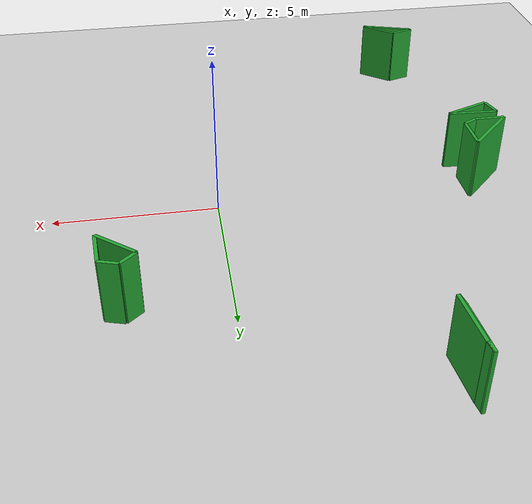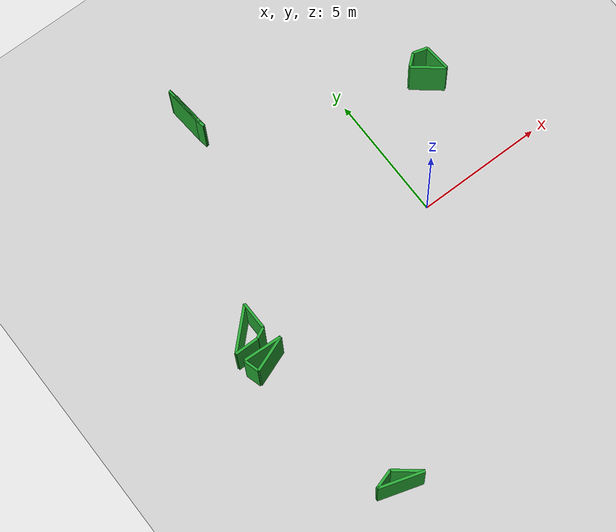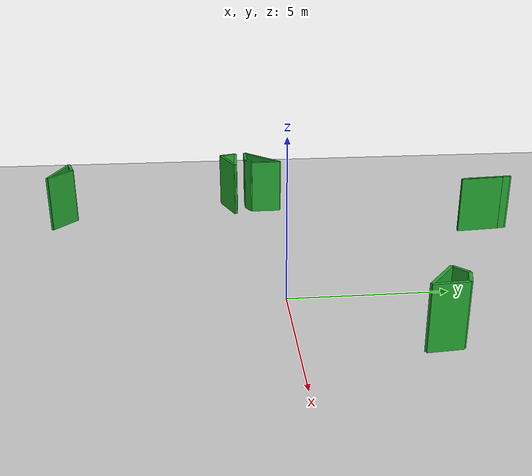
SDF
<?xml version="1" ?>
<sdf version="1.4">
  <world name="random_python_gen">
    <include>
      <uri>model://ground_plane</uri>
    </include>
    <include>
      <uri>model://sun</uri>
    </include>
    <include>
	<uri>model://random_boxes</uri>
    </include>
  </world>
</sdf>

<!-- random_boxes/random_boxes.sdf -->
<sdf version='1.6'>
  <model name='walls'>
    <pose frame=''>0 0 0 0 -0 0</pose>
    <static>1</static>
    <link name='obstcle_1'>
      <collision name='edge_1_Collision'>
        <geometry>
          <box>
            <size>1.56 0.1 2</size>
          </box>
        </geometry>
        <pose frame=''>-5.04 7.70 1 0 -0 -1.48</pose>
      </collision>
      <visual name='edge_1_Visual'>
        <pose frame=''>-5.04 7.70 1 0 -0 -1.48</pose>
        <geometry>
          <box>
            <size>1.56 0.1 2</size>
          </box>
        </geometry>
        <material>
          <script>
            <uri>file://media/materials/scripts/gazebo.material</uri>
            <name>Gazebo/Green</name>
          </script>
          <ambient>1 1 1 1</ambient>
        </material>
        <meta>
          <layer>0</layer>
        </meta>
      </visual>
      <collision name='edge_2_Collision'>
        <geometry>
          <box>
            <size>0.33 0.1 2</size>
          </box>
        </geometry>
        <pose frame=''>-5.14 8.64 1 0 -0 -1.42</pose>
      </collision>
      <visual name='edge_2_Visual'>
        <pose frame=''>-5.14 8.64 1 0 -0 -1.42</pose>
        <geometry>
          <box>
            <size>0.33 0.1 2</size>
          </box>
        </geometry>
        <material>
          <script>
            <uri>file://media/materials/scripts/gazebo.material</uri>
            <name>Gazebo/Green</name>
          </script>
          <ambient>1 1 1 1</ambient>
        </material>
        <meta>
          <layer>0</layer>
        </meta>
      </visual>
      <collision name='edge_3_Collision'>
        <geometry>
          <box>
            <size>1.52 0.1 2</size>
          </box>
        </geometry>
        <pose frame=''>-5.10 8.05 1 0 -0 -1.49</pose>
      </collision>
      <visual name='edge_3_Visual'>
        <pose frame=''>-5.10 8.05 1 0 -0 -1.49</pose>
        <geometry>
          <box>
            <size>1.52 0.1 2</size>
          </box>
        </geometry>
        <material>
          <script>
            <uri>file://media/materials/scripts/gazebo.material</uri>
            <name>Gazebo/Green</name>
          </script>
          <ambient>1 1 1 1</ambient>
        </material>
        <meta>
          <layer>0</layer>
        </meta>
      </visual>
      <collision name='edge_4_Collision'>
        <geometry>
          <box>
            <size>0.38 0.1 2</size>
          </box>
        </geometry>
        <pose frame=''>-5.01 7.11 1 0 -0 -1.39</pose>
      </collision>
      <visual name='edge_4_Visual'>
        <pose frame=''>-5.01 7.11 1 0 -0 -1.39</pose>
        <geometry>
          <box>
            <size>0.38 0.1 2</size>
          </box>
        </geometry>
        <material>
          <script>
            <uri>file://media/materials/scripts/gazebo.material</uri>
            <name>Gazebo/Green</name>
          </script>
          <ambient>1 1 1 1</ambient>
        </material>
        <meta>
          <layer>0</layer>
        </meta>
      </visual>
    </link>
    <link name='obstcle_2'>
      <collision name='edge_5_Collision'>
        <geometry>
          <box>
            <size>1.21 0.1 2</size>
          </box>
        </geometry>
        <pose frame=''>-6.95 -7.67 1 0 -0 -0.67</pose>
      </collision>
      <visual name='edge_5_Visual'>
        <pose frame=''>-6.95 -7.67 1 0 -0 -0.67</pose>
        <geometry>
          <box>
            <size>1.21 0.1 2</size>
          </box>
        </geometry>
        <material>
          <script>
            <uri>file://media/materials/scripts/gazebo.material</uri>
            <name>Gazebo/Green</name>
          </script>
          <ambient>1 1 1 1</ambient>
        </material>
        <meta>
          <layer>0</layer>
        </meta>
      </visual>
      <collision name='edge_6_Collision'>
        <geometry>
          <box>
            <size>0.78 0.1 2</size>
          </box>
        </geometry>
        <pose frame=''>-7.79 -7.41 1 0 -0 0.30</pose>
      </collision>
      <visual name='edge_6_Visual'>
        <pose frame=''>-7.79 -7.41 1 0 -0 0.30</pose>
        <geometry>
          <box>
            <size>0.78 0.1 2</size>
          </box>
        </geometry>
        <material>
          <script>
            <uri>file://media/materials/scripts/gazebo.material</uri>
            <name>Gazebo/Green</name>
          </script>
          <ambient>1 1 1 1</ambient>
        </material>
        <meta>
          <layer>0</layer>
        </meta>
      </visual>
      <collision name='edge_7_Collision'>
        <geometry>
          <box>
            <size>1.77 0.1 2</size>
          </box>
        </geometry>
        <pose frame=''>-7.32 -7.79 1 0 -0 -0.30</pose>
      </collision>
      <visual name='edge_7_Visual'>
        <pose frame=''>-7.32 -7.79 1 0 -0 -0.30</pose>
        <geometry>
          <box>
            <size>1.77 0.1 2</size>
          </box>
        </geometry>
        <material>
          <script>
            <uri>file://media/materials/scripts/gazebo.material</uri>
            <name>Gazebo/Green</name>
          </script>
          <ambient>1 1 1 1</ambient>
        </material>
        <meta>
          <layer>0</layer>
        </meta>
      </visual>
    </link>
    <link name='obstcle_3'>
      <collision name='edge_8_Collision'>
        <geometry>
          <box>
            <size>0.46 0.1 2</size>
          </box>
        </geometry>
        <pose frame=''>-8.03 -0.63 1 0 -0 0.46</pose>
      </collision>
      <visual name='edge_8_Visual'>
        <pose frame=''>-8.03 -0.63 1 0 -0 0.46</pose>
        <geometry>
          <box>
            <size>0.46 0.1 2</size>
          </box>
        </geometry>
        <material>
          <script>
            <uri>file://media/materials/scripts/gazebo.material</uri>
            <name>Gazebo/Green</name>
          </script>
          <ambient>1 1 1 1</ambient>
        </material>
        <meta>
          <layer>0</layer>
        </meta>
      </visual>
      <collision name='edge_9_Collision'>
        <geometry>
          <box>
            <size>1.09 0.1 2</size>
          </box>
        </geometry>
        <pose frame=''>-7.83 0.02 1 0 -0 -1.56</pose>
      </collision>
      <visual name='edge_9_Visual'>
        <pose frame=''>-7.83 0.02 1 0 -0 -1.56</pose>
        <geometry>
          <box>
            <size>1.09 0.1 2</size>
          </box>
        </geometry>
        <material>
          <script>
            <uri>file://media/materials/scripts/gazebo.material</uri>
            <name>Gazebo/Green</name>
          </script>
          <ambient>1 1 1 1</ambient>
        </material>
        <meta>
          <layer>0</layer>
        </meta>
      </visual>
      <collision name='edge_10_Collision'>
        <geometry>
          <box>
            <size>1.86 0.1 2</size>
          </box>
        </geometry>
        <pose frame=''>-8.50 -0.08 1 0 -0 0.77</pose>
      </collision>
      <visual name='edge_10_Visual'>
        <pose frame=''>-8.50 -0.08 1 0 -0 0.77</pose>
        <geometry>
          <box>
            <size>1.86 0.1 2</size>
          </box>
        </geometry>
        <material>
          <script>
            <uri>file://media/materials/scripts/gazebo.material</uri>
            <name>Gazebo/Green</name>
          </script>
          <ambient>1 1 1 1</ambient>
        </material>
        <meta>
          <layer>0</layer>
        </meta>
      </visual>
      <collision name='edge_11_Collision'>
        <geometry>
          <box>
            <size>0.94 0.1 2</size>
          </box>
        </geometry>
        <pose frame=''>-8.70 -0.73 1 0 -0 -0.01</pose>
      </collision>
      <visual name='edge_11_Visual'>
        <pose frame=''>-8.70 -0.73 1 0 -0 -0.01</pose>
        <geometry>
          <box>
            <size>0.94 0.1 2</size>
          </box>
        </geometry>
        <material>
          <script>
            <uri>file://media/materials/scripts/gazebo.material</uri>
            <name>Gazebo/Green</name>
          </script>
          <ambient>1 1 1 1</ambient>
        </material>
        <meta>
          <layer>0</layer>
        </meta>
      </visual>
    </link>
    <link name='obstcle_4'>
      <collision name='edge_12_Collision'>
        <geometry>
          <box>
            <size>1.05 0.1 2</size>
          </box>
        </geometry>
        <pose frame=''>3.43 3.87 1 0 -0 -1.49</pose>
      </collision>
      <visual name='edge_12_Visual'>
        <pose frame=''>3.43 3.87 1 0 -0 -1.49</pose>
        <geometry>
          <box>
            <size>1.05 0.1 2</size>
          </box>
        </geometry>
        <material>
          <script>
            <uri>file://media/materials/scripts/gazebo.material</uri>
            <name>Gazebo/Green</name>
          </script>
          <ambient>1 1 1 1</ambient>
        </material>
        <meta>
          <layer>0</layer>
        </meta>
      </visual>
      <collision name='edge_13_Collision'>
        <geometry>
          <box>
            <size>0.57 0.1 2</size>
          </box>
        </geometry>
        <pose frame=''>3.12 4.48 1 0 -0 -0.29</pose>
      </collision>
      <visual name='edge_13_Visual'>
        <pose frame=''>3.12 4.48 1 0 -0 -0.29</pose>
        <geometry>
          <box>
            <size>0.57 0.1 2</size>
          </box>
        </geometry>
        <material>
          <script>
            <uri>file://media/materials/scripts/gazebo.material</uri>
            <name>Gazebo/Green</name>
          </script>
          <ambient>1 1 1 1</ambient>
        </material>
        <meta>
          <layer>0</layer>
        </meta>
      </visual>
      <collision name='edge_14_Collision'>
        <geometry>
          <box>
            <size>0.56 0.1 2</size>
          </box>
        </geometry>
        <pose frame=''>2.63 4.38 1 0 -0 0.70</pose>
      </collision>
      <visual name='edge_14_Visual'>
        <pose frame=''>2.63 4.38 1 0 -0 0.70</pose>
        <geometry>
          <box>
            <size>0.56 0.1 2</size>
          </box>
        </geometry>
        <material>
          <script>
            <uri>file://media/materials/scripts/gazebo.material</uri>
            <name>Gazebo/Green</name>
          </script>
          <ambient>1 1 1 1</ambient>
        </material>
        <meta>
          <layer>0</layer>
        </meta>
      </visual>
      <collision name='edge_15_Collision'>
        <geometry>
          <box>
            <size>1.35 0.1 2</size>
          </box>
        </geometry>
        <pose frame=''>2.94 3.77 1 0 -0 -0.68</pose>
      </collision>
      <visual name='edge_15_Visual'>
        <pose frame=''>2.94 3.77 1 0 -0 -0.68</pose>
        <geometry>
          <box>
            <size>1.35 0.1 2</size>
          </box>
        </geometry>
        <material>
          <script>
            <uri>file://media/materials/scripts/gazebo.material</uri>
            <name>Gazebo/Green</name>
          </script>
          <ambient>1 1 1 1</ambient>
        </material>
        <meta>
          <layer>0</layer>
        </meta>
      </visual>
    </link>
    <link name='obstcle_5'>
      <collision name='edge_16_Collision'>
        <geometry>
          <box>
            <size>1.44 0.1 2</size>
          </box>
        </geometry>
        <pose frame=''>-8.22 -1.44 1 0 -0 0.36</pose>
      </collision>
      <visual name='edge_16_Visual'>
        <pose frame=''>-8.22 -1.44 1 0 -0 0.36</pose>
        <geometry>
          <box>
            <size>1.44 0.1 2</size>
          </box>
        </geometry>
        <material>
          <script>
            <uri>file://media/materials/scripts/gazebo.material</uri>
            <name>Gazebo/Green</name>
          </script>
          <ambient>1 1 1 1</ambient>
        </material>
        <meta>
          <layer>0</layer>
        </meta>
      </visual>
      <collision name='edge_17_Collision'>
        <geometry>
          <box>
            <size>1.52 0.1 2</size>
          </box>
        </geometry>
        <pose frame=''>-8.30 -1.14 1 0 -0 -0.05</pose>
      </collision>
      <visual name='edge_17_Visual'>
        <pose frame=''>-8.30 -1.14 1 0 -0 -0.05</pose>
        <geometry>
          <box>
            <size>1.52 0.1 2</size>
          </box>
        </geometry>
        <material>
          <script>
            <uri>file://media/materials/scripts/gazebo.material</uri>
            <name>Gazebo/Green</name>
          </script>
          <ambient>1 1 1 1</ambient>
        </material>
        <meta>
          <layer>0</layer>
        </meta>
      </visual>
      <collision name='edge_18_Collision'>
        <geometry>
          <box>
            <size>0.61 0.1 2</size>
          </box>
        </geometry>
        <pose frame=''>-8.98 -1.40 1 0 -0 -1.29</pose>
      </collision>
      <visual name='edge_18_Visual'>
        <pose frame=''>-8.98 -1.40 1 0 -0 -1.29</pose>
        <geometry>
          <box>
            <size>0.61 0.1 2</size>
          </box>
        </geometry>
        <material>
          <script>
            <uri>file://media/materials/scripts/gazebo.material</uri>
            <name>Gazebo/Green</name>
          </script>
          <ambient>1 1 1 1</ambient>
        </material>
        <meta>
          <layer>0</layer>
        </meta>
      </visual>
    </link>
  </model>
</sdf>
